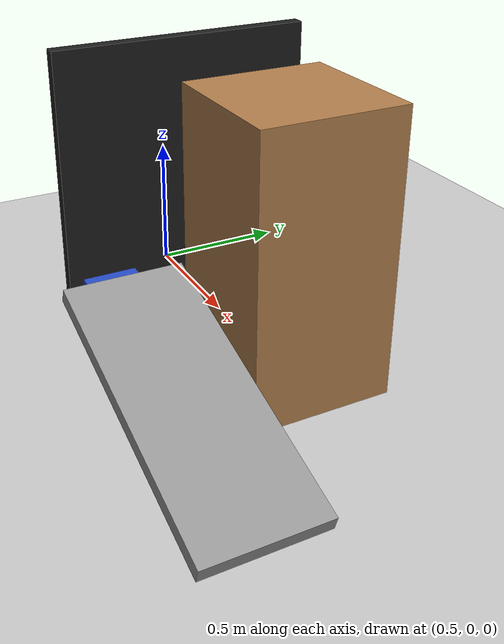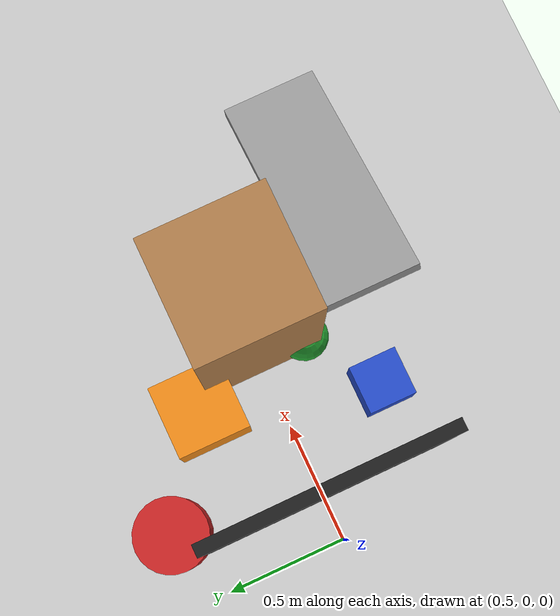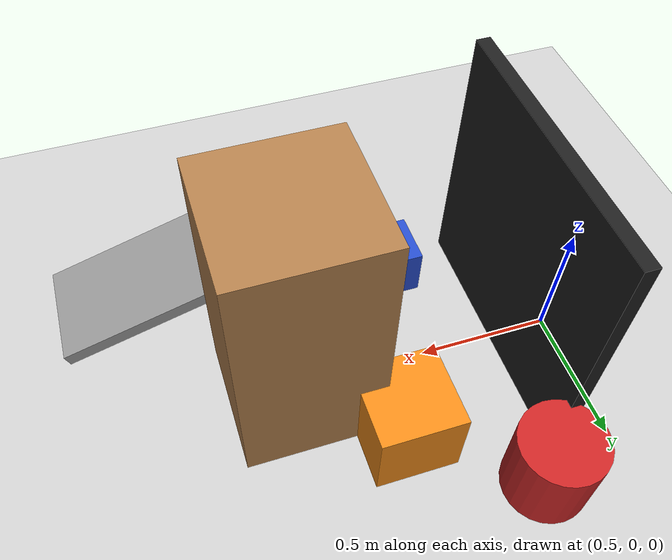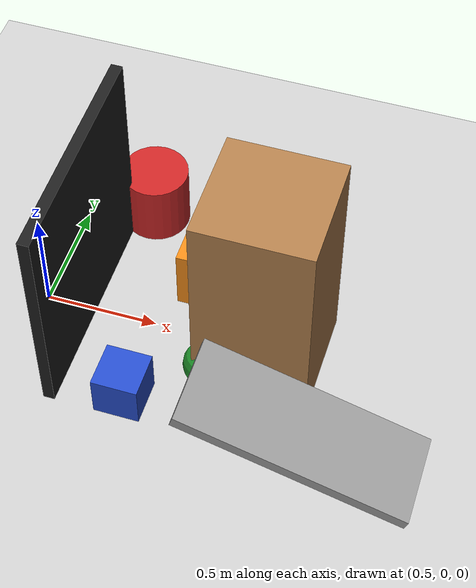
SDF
<?xml version="1.0" ?>
<sdf version="1.6">
  <world name="contact_manipulation_arena">

    <!-- Physics configuration optimized for contact manipulation -->
    <physics name="default_physics" default="0" type="ode">
      <real_time_factor>1</real_time_factor>
      <real_time_update_rate>1000</real_time_update_rate>
      <max_step_size>0.001</max_step_size>
      <ode>
        <solver>
          <type>quick</type>
          <iters>150</iters>
          <precon_iters>0</precon_iters>
          <sor>1.400000</sor>
          <use_dynamic_moi_rescaling>1</use_dynamic_moi_rescaling>
        </solver>
        <constraints>
          <cfm>0.00001</cfm>
          <erp>0.2</erp>
          <contact_max_correcting_vel>2000.000000</contact_max_correcting_vel>
          <contact_surface_layer>0.01000</contact_surface_layer>
        </constraints>
      </ode>
    </physics>

    <!-- Gravity -->
    <gravity>0 0 -9.81</gravity>

    <!-- Scene -->
    <scene>
      <ambient>0.4 0.4 0.4 1</ambient>
      <background>0.7 0.7 0.7 1</background>
      <shadows>true</shadows>
    </scene>

    <!-- Lighting -->
    <light type="directional" name="sun">
      <cast_shadows>true</cast_shadows>
      <pose>0 0 10 0 0 0</pose>
      <diffuse>0.8 0.8 0.8 1</diffuse>
      <specular>0.2 0.2 0.2 1</specular>
      <direction>-0.5 0.1 -0.9</direction>
    </light>

    <!-- Additional lighting for better visibility -->
    <light type="point" name="point_light_1">
      <pose>2 2 3 0 0 0</pose>
      <diffuse>0.5 0.5 0.5 1</diffuse>
      <specular>0.1 0.1 0.1 1</specular>
      <attenuation>
        <range>20</range>
        <constant>0.5</constant>
        <linear>0.01</linear>
        <quadratic>0.001</quadratic>
      </attenuation>
    </light>

    <!-- Ground Plane with higher friction for manipulation -->
    <model name="ground_plane">
      <static>true</static>
      <link name="link">
        <collision name="collision">
          <geometry>
            <plane>
              <normal>0 0 1</normal>
              <size>100 100</size>
            </plane>
          </geometry>
          <surface>
            <contact>
              <collide_bitmask>65535</collide_bitmask>
              <ode>
                <mu>1.0</mu>
                <mu2>1.0</mu2>
              </ode>
            </contact>
            <friction>
              <ode>
                <mu>1.0</mu>
                <mu2>1.0</mu2>
              </ode>
            </friction>
          </surface>
        </collision>
        <visual name="visual">
          <cast_shadows>false</cast_shadows>
          <geometry>
            <plane>
              <normal>0 0 1</normal>
              <size>100 100</size>
            </plane>
          </geometry>
          <material>
            <script>
              <uri>file://media/materials/scripts/gazebo.material</uri>
              <name>Gazebo/Grey</name>
            </script>
          </material>
        </visual>
      </link>
    </model>

    <!-- Manipulation objects for whole-arm contact -->

    <!-- Large Box (0.5kg) - Easy to push -->
    <model name="large_box_light">
      <pose>1.2 0.3 0.15 0 0 0</pose>
      <link name="link">
        <inertial>
          <mass>0.5</mass>
          <inertia>
            <ixx>0.0125</ixx>
            <iyy>0.0125</iyy>
            <izz>0.0125</izz>
          </inertia>
        </inertial>
        <collision name="collision">
          <geometry>
            <box>
              <size>0.3 0.3 0.3</size>
            </box>
          </geometry>
          <surface>
            <contact>
              <ode>
                <mu>0.8</mu>
                <mu2>0.8</mu2>
              </ode>
            </contact>
            <friction>
              <ode>
                <mu>0.8</mu>
                <mu2>0.8</mu2>
              </ode>
            </friction>
          </surface>
        </collision>
        <visual name="visual">
          <geometry>
            <box>
              <size>0.3 0.3 0.3</size>
            </box>
          </geometry>
          <material>
            <script>
              <uri>file://media/materials/scripts/gazebo.material</uri>
              <name>Gazebo/Orange</name>
            </script>
          </material>
        </visual>
      </link>
    </model>

    <!-- Medium Box (2kg) - Moderate resistance -->
    <model name="medium_box">
      <pose>1.0 -0.4 0.1 0 0 0</pose>
      <link name="link">
        <inertial>
          <mass>2.0</mass>
          <inertia>
            <ixx>0.0133</ixx>
            <iyy>0.0133</iyy>
            <izz>0.0133</izz>
          </inertia>
        </inertial>
        <collision name="collision">
          <geometry>
            <box>
              <size>0.2 0.2 0.2</size>
            </box>
          </geometry>
          <surface>
            <contact>
              <ode>
                <mu>0.9</mu>
                <mu2>0.9</mu2>
              </ode>
            </contact>
            <friction>
              <ode>
                <mu>0.9</mu>
                <mu2>0.9</mu2>
              </ode>
            </friction>
          </surface>
        </collision>
        <visual name="visual">
          <geometry>
            <box>
              <size>0.2 0.2 0.2</size>
            </box>
          </geometry>
          <material>
            <script>
              <uri>file://media/materials/scripts/gazebo.material</uri>
              <name>Gazebo/Blue</name>
            </script>
          </material>
        </visual>
      </link>
    </model>

    <!-- Heavy Cylinder (5kg) - Hard to move -->
    <model name="heavy_cylinder">
      <pose>0.8 0.6 0.15 0 0 0</pose>
      <link name="link">
        <inertial>
          <mass>5.0</mass>
          <inertia>
            <ixx>0.1125</ixx>
            <iyy>0.1125</iyy>
            <izz>0.1125</izz>
          </inertia>
        </inertial>
        <collision name="collision">
          <geometry>
            <cylinder>
              <radius>0.15</radius>
              <length>0.3</length>
            </cylinder>
          </geometry>
          <surface>
            <contact>
              <ode>
                <mu>1.2</mu>
                <mu2>1.2</mu2>
              </ode>
            </contact>
            <friction>
              <ode>
                <mu>1.2</mu>
                <mu2>1.2</mu2>
              </ode>
            </friction>
          </surface>
        </collision>
        <visual name="visual">
          <geometry>
            <cylinder>
              <radius>0.15</radius>
              <length>0.3</length>
            </cylinder>
          </geometry>
          <material>
            <script>
              <uri>file://media/materials/scripts/gazebo.material</uri>
              <name>Gazebo/Red</name>
            </script>
          </material>
        </visual>
      </link>
    </model>

    <!-- Elevated Platform for reaching tasks -->
    <model name="platform_1">
      <pose>1.5 0 0.5 0 0 0</pose>
      <static>true</static>
      <link name="link">
        <collision name="collision">
          <geometry>
            <box>
              <size>0.5 0.5 1.0</size>
            </box>
          </geometry>
          <surface>
            <contact>
              <ode>
                <mu>0.8</mu>
                <mu2>0.8</mu2>
              </ode>
            </contact>
          </surface>
        </collision>
        <visual name="visual">
          <geometry>
            <box>
              <size>0.5 0.5 1.0</size>
            </box>
          </geometry>
          <material>
            <script>
              <uri>file://media/materials/scripts/gazebo.material</uri>
              <name>Gazebo/Wood</name>
            </script>
          </material>
        </visual>
      </link>
    </model>

    <!-- Inclined ramp for sliding tasks -->
    <model name="ramp">
      <pose>1.8 -0.5 0.25 0 0.3 0</pose>
      <static>true</static>
      <link name="link">
        <collision name="collision">
          <geometry>
            <box>
              <size>1.0 0.4 0.05</size>
            </box>
          </geometry>
          <surface>
            <contact>
              <ode>
                <mu>0.6</mu>
                <mu2>0.6</mu2>
              </ode>
            </contact>
          </surface>
        </collision>
        <visual name="visual">
          <geometry>
            <box>
              <size>1.0 0.4 0.05</size>
            </box>
          </geometry>
          <material>
            <script>
              <uri>file://media/materials/scripts/gazebo.material</uri>
              <name>Gazebo/Grey</name>
            </script>
          </material>
        </visual>
      </link>
    </model>

    <!-- Ball for rolling tasks -->
    <model name="ball">
      <pose>1.3 -0.2 0.1 0 0 0</pose>
      <link name="link">
        <inertial>
          <mass>0.8</mass>
          <inertia>
            <ixx>0.016</ixx>
            <iyy>0.016</iyy>
            <izz>0.016</izz>
          </inertia>
        </inertial>
        <collision name="collision">
          <geometry>
            <sphere>
              <radius>0.1</radius>
            </sphere>
          </geometry>
          <surface>
            <contact>
              <ode>
                <mu>0.7</mu>
                <mu2>0.7</mu2>
              </ode>
            </contact>
            <friction>
              <ode>
                <mu>0.7</mu>
                <mu2>0.7</mu2>
              </ode>
            </friction>
          </surface>
        </collision>
        <visual name="visual">
          <geometry>
            <sphere>
              <radius>0.1</radius>
            </sphere>
          </geometry>
          <material>
            <script>
              <uri>file://media/materials/scripts/gazebo.material</uri>
              <name>Gazebo/Green</name>
            </script>
          </material>
        </visual>
      </link>
    </model>

    <!-- Barrier wall for testing obstacle avoidance -->
    <model name="barrier">
      <pose>0.7 0 0.5 0 0 0</pose>
      <static>true</static>
      <link name="link">
        <collision name="collision">
          <geometry>
            <box>
              <size>0.05 1.0 1.0</size>
            </box>
          </geometry>
        </collision>
        <visual name="visual">
          <geometry>
            <box>
              <size>0.05 1.0 1.0</size>
            </box>
          </geometry>
          <material>
            <script>
              <uri>file://media/materials/scripts/gazebo.material</uri>
              <name>Gazebo/Black</name>
            </script>
          </material>
        </visual>
      </link>
    </model>

    <!-- GUI -->
    <gui fullscreen='0'>
      <camera name='user_camera'>
        <pose frame=''>3.0 3.0 2.5 0 0.5 -2.35</pose>
        <view_controller>orbit</view_controller>
        <projection_type>perspective</projection_type>
      </camera>
    </gui>

  </world>
</sdf>
